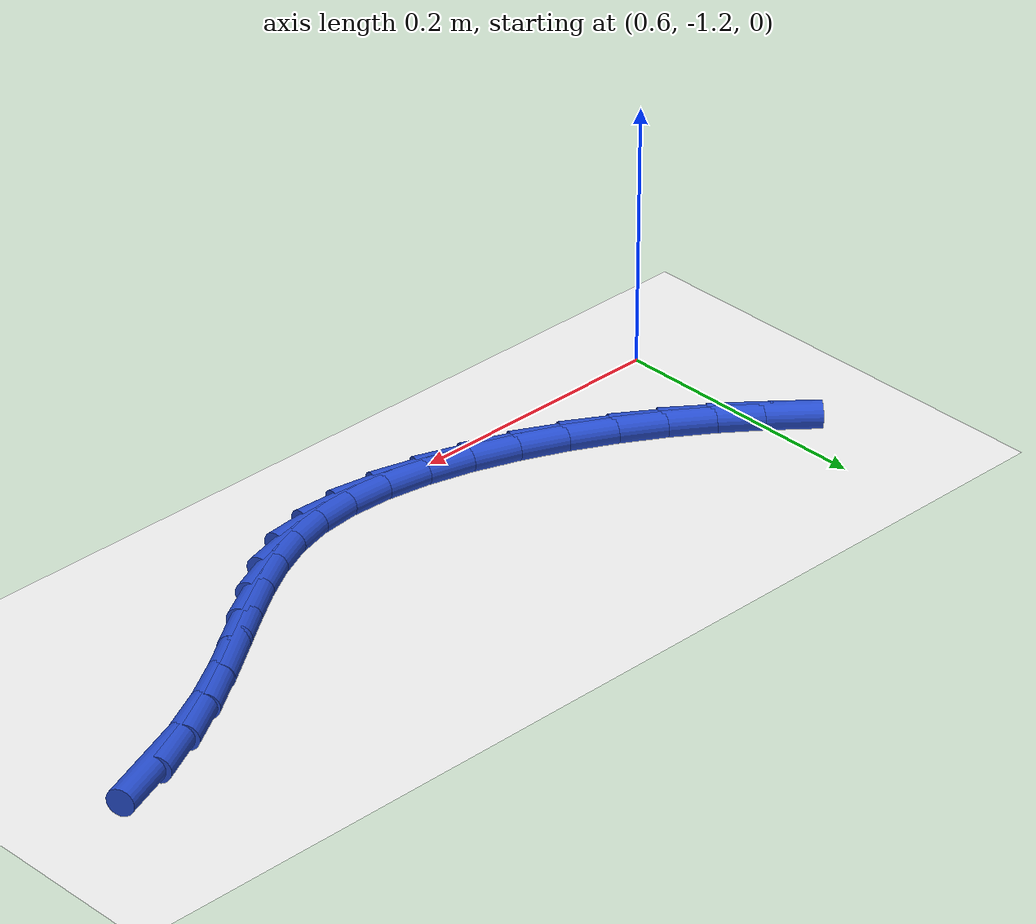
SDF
<sdf version="1.6">
 <world name="default">
  <model name="ground_plane">
   <static>1</static>
   <link name="link">
    <collision name="collision">
     <geometry><plane><normal>0 0 1</normal><size>100 100</size></plane></geometry>
     <surface><friction><ode><mu>100</mu><mu2>50</mu2></ode></friction></surface>
    </collision>
    <visual name="visual">
     <cast_shadows>0</cast_shadows>
     <geometry><plane><normal>0 0 1</normal><size>100 100</size></plane></geometry>
     <material>
      <script><uri>file://media/materials/scripts/gazebo.material</uri><name>Gazebo/WhiteGlow</name></script>
     </material>
    </visual>
   </link>
  </model>
  <model name="line">
   <link name="link_183">
    <pose>1.1770798892986565 -1.0496726244778698 0.01 0 1.57 0.36634459438396</pose>
    <collision name="collision">
     <geometry><cylinder><radius>0.01</radius><length>0.08</length></cylinder></geometry>
    </collision>
    <visual name="visual">
     <material>
      <script><name>Gazebo/Blue</name><uri>file://media/materials/scripts/gazebo.material</uri></script>
     </material>
     <geometry><cylinder><radius>0.01</radius><length>0.08</length></cylinder></geometry>
    </visual>
   </link>
   <link name="link_184">
    <pose>1.1397380628065539 -1.0639993307786022 0.01 0 1.57 0.46441039871465917</pose>
    <collision name="collision">
     <geometry><cylinder><radius>0.01</radius><length>0.08</length></cylinder></geometry>
    </collision>
    <visual name="visual">
     <material>
      <script><name>Gazebo/Blue</name><uri>file://media/materials/scripts/gazebo.material</uri></script>
     </material>
     <geometry><cylinder><radius>0.01</radius><length>0.08</length></cylinder></geometry>
    </visual>
   </link>
   <link name="link_185">
    <pose>1.1061910762888423 -1.0808048228681617 0.01 0 1.57 0.5412813319703682</pose>
    <collision name="collision">
     <geometry><cylinder><radius>0.01</radius><length>0.08</length></cylinder></geometry>
    </collision>
    <visual name="visual">
     <material>
      <script><name>Gazebo/Blue</name><uri>file://media/materials/scripts/gazebo.material</uri></script>
     </material>
     <geometry><cylinder><radius>0.01</radius><length>0.08</length></cylinder></geometry>
    </visual>
   </link>
   <link name="link_186">
    <pose>1.0756802686498905 -1.0991470874086167 0.01 0 1.57 0.5908130737550937</pose>
    <collision name="collision">
     <geometry><cylinder><radius>0.01</radius><length>0.08</length></cylinder></geometry>
    </collision>
    <visual name="visual">
     <material>
      <script><name>Gazebo/Blue</name><uri>file://media/materials/scripts/gazebo.material</uri></script>
     </material>
     <geometry><cylinder><radius>0.01</radius><length>0.08</length></cylinder></geometry>
    </visual>
   </link>
   <link name="link_187">
    <pose>1.0474469787940655 -1.1180841110620372 0.01 0 1.57 0.6079486907233607</pose>
    <collision name="collision">
     <geometry><cylinder><radius>0.01</radius><length>0.08</length></cylinder></geometry>
    </collision>
    <visual name="visual">
     <material>
      <script><name>Gazebo/Blue</name><uri>file://media/materials/scripts/gazebo.material</uri></script>
     </material>
     <geometry><cylinder><radius>0.01</radius><length>0.08</length></cylinder></geometry>
    </visual>
   </link>
   <link name="link_188">
    <pose>1.0207325456257355 -1.1366738804904928 0.01 0 1.57 0.5879406319493916</pose>
    <collision name="collision">
     <geometry><cylinder><radius>0.01</radius><length>0.08</length></cylinder></geometry>
    </collision>
    <visual name="visual">
     <material>
      <script><name>Gazebo/Blue</name><uri>file://media/materials/scripts/gazebo.material</uri></script>
     </material>
     <geometry><cylinder><radius>0.01</radius><length>0.08</length></cylinder></geometry>
    </visual>
   </link>
   <link name="link_189">
    <pose>0.9947783080492676 -1.153974382356053 0.01 0 1.57 0.5260638110861462</pose>
    <collision name="collision">
     <geometry><cylinder><radius>0.01</radius><length>0.08</length></cylinder></geometry>
    </collision>
    <visual name="visual">
     <material>
      <script><name>Gazebo/Blue</name><uri>file://media/materials/scripts/gazebo.material</uri></script>
     </material>
     <geometry><cylinder><radius>0.01</radius><length>0.08</length></cylinder></geometry>
    </visual>
   </link>
   <link name="link_190">
    <pose>0.9688256049690305 -1.1690436033207878 0.01 0 1.57 0.4190022581093979</pose>
    <collision name="collision">
     <geometry><cylinder><radius>0.01</radius><length>0.08</length></cylinder></geometry>
    </collision>
    <visual name="visual">
     <material>
      <script><name>Gazebo/Blue</name><uri>file://media/materials/scripts/gazebo.material</uri></script>
     </material>
     <geometry><cylinder><radius>0.01</radius><length>0.08</length></cylinder></geometry>
    </visual>
   </link>
   <link name="link_191">
    <pose>0.9421157752893916 -1.1809395300467669 0.01 0 1.57 0.26898780714976267</pose>
    <collision name="collision">
     <geometry><cylinder><radius>0.01</radius><length>0.08</length></cylinder></geometry>
    </collision>
    <visual name="visual">
     <material>
      <script><name>Gazebo/Blue</name><uri>file://media/materials/scripts/gazebo.material</uri></script>
     </material>
     <geometry><cylinder><radius>0.01</radius><length>0.08</length></cylinder></geometry>
    </visual>
   </link>
   <link name="link_192">
    <pose>0.9138903772090671 -1.1887203893747715 0.01 0 1.57 0.10020392347114986</pose>
    <collision name="collision">
     <geometry><cylinder><radius>0.01</radius><length>0.08</length></cylinder></geometry>
    </collision>
    <visual name="visual">
     <material>
      <script><name>Gazebo/Blue</name><uri>file://media/materials/scripts/gazebo.material</uri></script>
     </material>
     <geometry><cylinder><radius>0.01</radius><length>0.08</length></cylinder></geometry>
    </visual>
   </link>
   <link name="link_193">
    <pose>0.8836773201487694 -1.191758029851102 0.01 0 1.57 -0.044072792096540615</pose>
    <collision name="collision">
     <geometry><cylinder><radius>0.01</radius><length>0.08</length></cylinder></geometry>
    </collision>
    <visual name="visual">
     <material>
      <script><name>Gazebo/Blue</name><uri>file://media/materials/scripts/gazebo.material</uri></script>
     </material>
     <geometry><cylinder><radius>0.01</radius><length>0.08</length></cylinder></geometry>
    </visual>
   </link>
   <link name="link_194">
    <pose>0.8518538969208489 -1.190354573921605 0.01 0 1.57 -0.16181848776893587</pose>
    <collision name="collision">
     <geometry><cylinder><radius>0.01</radius><length>0.08</length></cylinder></geometry>
    </collision>
    <visual name="visual">
     <material>
      <script><name>Gazebo/Blue</name><uri>file://media/materials/scripts/gazebo.material</uri></script>
     </material>
     <geometry><cylinder><radius>0.01</radius><length>0.08</length></cylinder></geometry>
    </visual>
   </link>
   <link name="link_195">
    <pose>0.8189541552174124 -1.184983827367003 0.01 0 1.57 -0.25910435103586554</pose>
    <collision name="collision">
     <geometry><cylinder><radius>0.01</radius><length>0.08</length></cylinder></geometry>
    </collision>
    <visual name="visual">
     <material>
      <script><name>Gazebo/Blue</name><uri>file://media/materials/scripts/gazebo.material</uri></script>
     </material>
     <geometry><cylinder><radius>0.01</radius><length>0.08</length></cylinder></geometry>
    </visual>
   </link>
   <link name="link_196">
    <pose>0.7855121427305668 -1.1761195959680169 0.01 0 1.57 -0.34136316221636737</pose>
    <collision name="collision">
     <geometry><cylinder><radius>0.01</radius><length>0.08</length></cylinder></geometry>
    </collision>
    <visual name="visual">
     <material>
      <script><name>Gazebo/Blue</name><uri>file://media/materials/scripts/gazebo.material</uri></script>
     </material>
     <geometry><cylinder><radius>0.01</radius><length>0.08</length></cylinder></geometry>
    </visual>
   </link>
   <link name="link_197">
    <pose>0.7520619071524189 -1.1642356855053693 0.01 0 1.57 -0.4130566085896577</pose>
    <collision name="collision">
     <geometry><cylinder><radius>0.01</radius><length>0.08</length></cylinder></geometry>
    </collision>
    <visual name="visual">
     <material>
      <script><name>Gazebo/Blue</name><uri>file://media/materials/scripts/gazebo.material</uri></script>
     </material>
     <geometry><cylinder><radius>0.01</radius><length>0.08</length></cylinder></geometry>
    </visual>
   </link>
   <link name="link_198">
    <pose>0.7191374961750757 -1.149805901759781 0.01 0 1.57 -0.47784521693817955</pose>
    <collision name="collision">
     <geometry><cylinder><radius>0.01</radius><length>0.08</length></cylinder></geometry>
    </collision>
    <visual name="visual">
     <material>
      <script><name>Gazebo/Blue</name><uri>file://media/materials/scripts/gazebo.material</uri></script>
     </material>
     <geometry><cylinder><radius>0.01</radius><length>0.08</length></cylinder></geometry>
    </visual>
   </link>
   <link name="link_199">
    <pose>0.6872729574906441 -1.133304050511974 0.01 0 1.57 -0.5388434219876579</pose>
    <collision name="collision">
     <geometry><cylinder><radius>0.01</radius><length>0.08</length></cylinder></geometry>
    </collision>
    <visual name="visual">
     <material>
      <script><name>Gazebo/Blue</name><uri>file://media/materials/scripts/gazebo.material</uri></script>
     </material>
     <geometry><cylinder><radius>0.01</radius><length>0.08</length></cylinder></geometry>
    </visual>
   </link>
   <link name="link_200">
    <pose>0.6569731478036253 -1.1151890500208343 0.01 0 1.57 -0.5973516550371779</pose>
    <collision name="collision">
     <geometry><cylinder><radius>0.01</radius><length>0.08</length></cylinder></geometry>
    </collision>
    <visual name="visual">
     <material>
      <script><name>Gazebo/Blue</name><uri>file://media/materials/scripts/gazebo.material</uri></script>
     </material>
     <geometry><cylinder><radius>0.01</radius><length>0.08</length></cylinder></geometry>
    </visual>
   </link>
   <link name="link_201">
    <pose>0.6283584714058648 -1.095723746258641 0.01 0 1.57 -0.6524401106935256</pose>
    <collision name="collision">
     <geometry><cylinder><radius>0.01</radius><length>0.08</length></cylinder></geometry>
    </collision>
    <visual name="visual">
     <material>
      <script><name>Gazebo/Blue</name><uri>file://media/materials/scripts/gazebo.material</uri></script>
     </material>
     <geometry><cylinder><radius>0.01</radius><length>0.08</length></cylinder></geometry>
    </visual>
   </link>
   <link name="link_202">
    <pose>0.6012780511961148 -1.075032630589127 0.01 0 1.57 -0.7033187313088834</pose>
    <collision name="collision">
     <geometry><cylinder><radius>0.01</radius><length>0.08</length></cylinder></geometry>
    </collision>
    <visual name="visual">
     <material>
      <script><name>Gazebo/Blue</name><uri>file://media/materials/scripts/gazebo.material</uri></script>
     </material>
     <geometry><cylinder><radius>0.01</radius><length>0.08</length></cylinder></geometry>
    </visual>
   </link>
  </model>
 </world>
</sdf>
